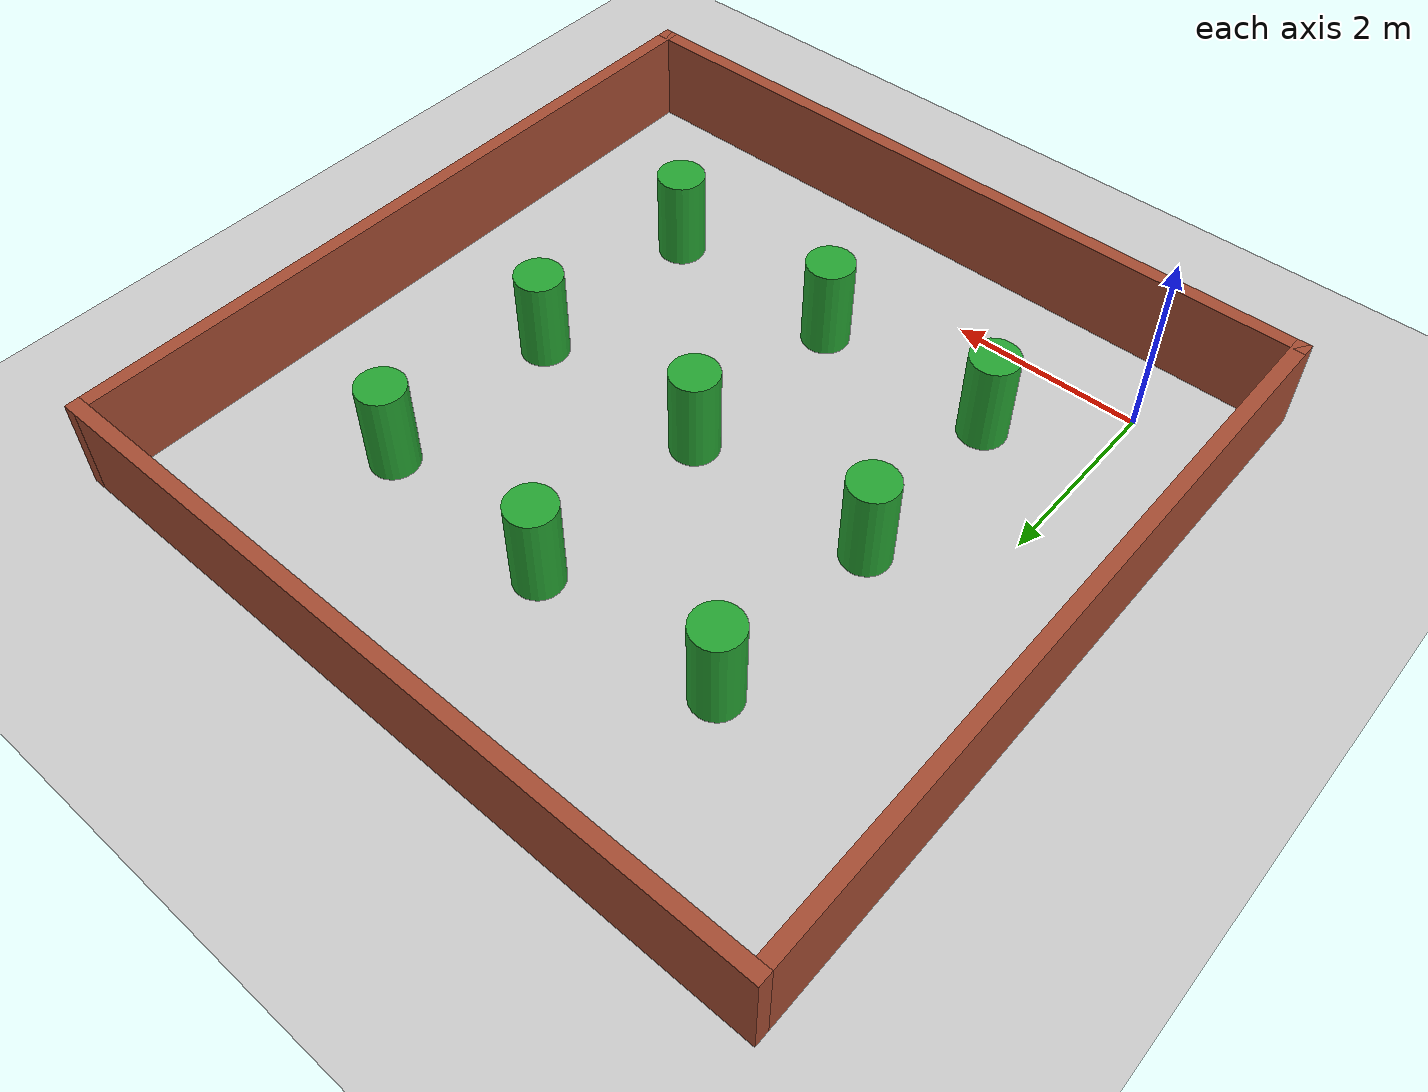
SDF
<sdf version="1.7">
 <world name="default">
  <light name="sun" type="directional">
   <pose>0 0 10 0 -0 0</pose>
   <diffuse>0.8 0.8 0.8 1</diffuse>
   <specular>0.2 0.2 0.2 1</specular>
   <attenuation>
    <range>1000</range>
    <constant>0.9</constant>
    <linear>0.01</linear>
    <quadratic>0.001</quadratic>
   </attenuation>
   <direction>-0.5 0.1 -0.9</direction>
   <spot><inner_angle>0</inner_angle><outer_angle>0</outer_angle><falloff>0</falloff></spot>
  </light>
  <model name="ground_plane">
   <static>1</static>
   <link name="link">
    <collision name="collision">
     <geometry><plane><normal>0 0 1</normal><size>100 100</size></plane></geometry>
     <surface><friction><ode><mu>100</mu><mu2>50</mu2></ode></friction></surface>
    </collision>
    <visual name="visual">
     <cast_shadows>0</cast_shadows>
     <geometry><plane><normal>0 0 1</normal><size>100 100</size></plane></geometry>
     <material>
      <script><uri>file://media/materials/scripts/gazebo.material</uri><name>Gazebo/Grey</name></script>
     </material>
    </visual>
   </link>
  </model>
  <gravity>0 0 -9.8</gravity>
  <magnetic_field>6e-06 2.3e-05 -4.2e-05</magnetic_field>
  <atmosphere type="adiabatic"/>
  <physics type="ode">
   <max_step_size>0.001</max_step_size>
   <real_time_factor>1</real_time_factor>
   <real_time_update_rate>1000</real_time_update_rate>
  </physics>
  <scene><ambient>0.4 0.4 0.4 1</ambient><background>0.7 0.7 0.7 1</background><shadows>1</shadows></scene>
  <spherical_coordinates>
   <surface_model>EARTH_WGS84</surface_model>
   <latitude_deg>0</latitude_deg>
   <longitude_deg>0</longitude_deg>
   <elevation>0</elevation>
   <heading_deg>0</heading_deg>
  </spherical_coordinates>
  <model name="obot_world">
   <pose>2.91671 3.00896 0 0 -0 0</pose>
   <link name="Wall_5">
    <collision name="Wall_5_Collision">
     <geometry><box><size>8 0.15 1</size></box></geometry>
     <pose>0 0 0.5 0 -0 0</pose>
    </collision>
    <visual name="Wall_5_Visual">
     <pose>0 0 0.5 0 -0 0</pose>
     <geometry><box><size>8 0.15 1</size></box></geometry>
     <material>
      <script><uri>file://media/materials/scripts/gazebo.material</uri><name>Gazebo/Bricks</name></script>
      <ambient>1 1 1 1</ambient>
     </material>
     <meta><layer>0</layer></meta>
    </visual>
    <pose>-0 -3.925 0 0 -0 0</pose>
   </link>
   <link name="Wall_6">
    <collision name="Wall_6_Collision">
     <geometry><box><size>8 0.15 1</size></box></geometry>
     <pose>0 0 0.5 0 -0 0</pose>
    </collision>
    <visual name="Wall_6_Visual">
     <pose>0 0 0.5 0 -0 0</pose>
     <geometry><box><size>8 0.15 1</size></box></geometry>
     <material>
      <script><uri>file://media/materials/scripts/gazebo.material</uri><name>Gazebo/Bricks</name></script>
      <ambient>1 1 1 1</ambient>
     </material>
     <meta><layer>0</layer></meta>
    </visual>
    <pose>3.925 -0 0 0 -0 1.5708</pose>
   </link>
   <link name="Wall_7">
    <collision name="Wall_7_Collision">
     <geometry><box><size>8 0.15 1</size></box></geometry>
     <pose>0 0 0.5 0 -0 0</pose>
    </collision>
    <visual name="Wall_7_Visual">
     <pose>0 0 0.5 0 -0 0</pose>
     <geometry><box><size>8 0.15 1</size></box></geometry>
     <material>
      <script><uri>file://media/materials/scripts/gazebo.material</uri><name>Gazebo/Bricks</name></script>
      <ambient>1 1 1 1</ambient>
     </material>
     <meta><layer>0</layer></meta>
    </visual>
    <pose>-0 3.925 0 0 -0 3.14159</pose>
   </link>
   <link name="Wall_8">
    <collision name="Wall_8_Collision">
     <geometry><box><size>8 0.15 1</size></box></geometry>
     <pose>0 0 0.5 0 -0 0</pose>
    </collision>
    <visual name="Wall_8_Visual">
     <pose>0 0 0.5 0 -0 0</pose>
     <geometry><box><size>8 0.15 1</size></box></geometry>
     <material>
      <script><uri>file://media/materials/scripts/gazebo.material</uri><name>Gazebo/Bricks</name></script>
      <ambient>1 1 1 1</ambient>
     </material>
     <meta><layer>0</layer></meta>
    </visual>
    <pose>-3.925 -0 0 0 -0 -1.5708</pose>
   </link>
   <static>1</static>
  </model>
  <model name="unit_cylinder">
   <link name="link">
    <inertial>
     <mass>100</mass>
     <inertia><ixx>14.5833</ixx><ixy>0</ixy><ixz>0</ixz><iyy>14.5833</iyy><iyz>0</iyz><izz>12.5</izz></inertia>
    </inertial>
    <visual name="visual">
     <geometry><cylinder><radius>0.25</radius><length>1</length></cylinder></geometry>
     <material>
      <script><name>Gazebo/Green</name><uri>file://media/materials/scripts/gazebo.material</uri></script>
      <shader type="pixel"><normal_map>__default__</normal_map></shader>
      <ambient>0.3 0.3 0.3 1</ambient>
      <diffuse>0.7 0.7 0.7 1</diffuse>
      <specular>0.01 0.01 0.01 1</specular>
      <emissive>0 0 0 1</emissive>
     </material>
    </visual>
    <collision name="collision">
     <geometry><cylinder><radius>0.25</radius><length>1</length></cylinder></geometry>
     <surface>
      <friction>
       <ode><mu>1</mu><mu2>1</mu2><fdir1>0 0 0</fdir1><slip1>0</slip1><slip2>0</slip2></ode>
       <torsional>
        <coefficient>1</coefficient>
        <patch_radius>0</patch_radius>
        <surface_radius>0</surface_radius>
        <use_patch_radius>1</use_patch_radius>
        <ode><slip>0</slip></ode>
       </torsional>
      </friction>
      <bounce><restitution_coefficient>0</restitution_coefficient><threshold>1e+06</threshold></bounce>
      <contact>
       <collide_without_contact>0</collide_without_contact>
       <collide_without_contact_bitmask>1</collide_without_contact_bitmask>
       <collide_bitmask>1</collide_bitmask>
       <ode>
        <soft_cfm>0</soft_cfm>
        <soft_erp>0.2</soft_erp>
        <kp>1e+13</kp>
        <kd>1</kd>
        <max_vel>0.01</max_vel>
        <min_depth>0</min_depth>
       </ode>
       <bullet>
        <split_impulse>1</split_impulse>
        <split_impulse_penetration_threshold>-0.01</split_impulse_penetration_threshold>
        <soft_cfm>0</soft_cfm>
        <soft_erp>0.2</soft_erp>
        <kp>1e+13</kp>
        <kd>1</kd>
       </bullet>
      </contact>
     </surface>
    </collision>
   </link>
   <static>0</static>
   <pose>1.04139 1.04439 0.5 0 -0 0</pose>
  </model>
  <model name="unit_cylinder_clone">
   <link name="link">
    <inertial>
     <mass>100</mass>
     <inertia><ixx>14.5833</ixx><ixy>0</ixy><ixz>0</ixz><iyy>14.5833</iyy><iyz>0</iyz><izz>12.5</izz></inertia>
    </inertial>
    <visual name="visual">
     <geometry><cylinder><radius>0.25</radius><length>1</length></cylinder></geometry>
     <material>
      <script><name>Gazebo/Green</name><uri>file://media/materials/scripts/gazebo.material</uri></script>
      <shader type="pixel"><normal_map>__default__</normal_map></shader>
      <ambient>0.3 0.3 0.3 1</ambient>
      <diffuse>0.7 0.7 0.7 1</diffuse>
      <specular>0.01 0.01 0.01 1</specular>
      <emissive>0 0 0 1</emissive>
     </material>
    </visual>
    <collision name="collision">
     <geometry><cylinder><radius>0.25</radius><length>1</length></cylinder></geometry>
     <surface>
      <friction>
       <ode><mu>1</mu><mu2>1</mu2><fdir1>0 0 0</fdir1><slip1>0</slip1><slip2>0</slip2></ode>
       <torsional>
        <coefficient>1</coefficient>
        <patch_radius>0</patch_radius>
        <surface_radius>0</surface_radius>
        <use_patch_radius>1</use_patch_radius>
        <ode><slip>0</slip></ode>
       </torsional>
      </friction>
      <bounce><restitution_coefficient>0</restitution_coefficient><threshold>1e+06</threshold></bounce>
      <contact>
       <collide_without_contact>0</collide_without_contact>
       <collide_without_contact_bitmask>1</collide_without_contact_bitmask>
       <collide_bitmask>1</collide_bitmask>
       <ode>
        <soft_cfm>0</soft_cfm>
        <soft_erp>0.2</soft_erp>
        <kp>1e+13</kp>
        <kd>1</kd>
        <max_vel>0.01</max_vel>
        <min_depth>0</min_depth>
       </ode>
       <bullet>
        <split_impulse>1</split_impulse>
        <split_impulse_penetration_threshold>-0.01</split_impulse_penetration_threshold>
        <soft_cfm>0</soft_cfm>
        <soft_erp>0.2</soft_erp>
        <kp>1e+13</kp>
        <kd>1</kd>
       </bullet>
      </contact>
     </surface>
    </collision>
   </link>
   <static>0</static>
   <pose>0.972942 2.99131 0.5 0 -0 0</pose>
  </model>
  <model name="unit_cylinder_clone_0">
   <link name="link">
    <inertial>
     <mass>100</mass>
     <inertia><ixx>14.5833</ixx><ixy>0</ixy><ixz>0</ixz><iyy>14.5833</iyy><iyz>0</iyz><izz>12.5</izz></inertia>
    </inertial>
    <visual name="visual">
     <geometry><cylinder><radius>0.25</radius><length>1</length></cylinder></geometry>
     <material>
      <script><name>Gazebo/Green</name><uri>file://media/materials/scripts/gazebo.material</uri></script>
      <shader type="pixel"><normal_map>__default__</normal_map></shader>
      <ambient>0.3 0.3 0.3 1</ambient>
      <diffuse>0.7 0.7 0.7 1</diffuse>
      <specular>0.01 0.01 0.01 1</specular>
      <emissive>0 0 0 1</emissive>
     </material>
    </visual>
    <collision name="collision">
     <geometry><cylinder><radius>0.25</radius><length>1</length></cylinder></geometry>
     <surface>
      <friction>
       <ode><mu>1</mu><mu2>1</mu2><fdir1>0 0 0</fdir1><slip1>0</slip1><slip2>0</slip2></ode>
       <torsional>
        <coefficient>1</coefficient>
        <patch_radius>0</patch_radius>
        <surface_radius>0</surface_radius>
        <use_patch_radius>1</use_patch_radius>
        <ode><slip>0</slip></ode>
       </torsional>
      </friction>
      <bounce><restitution_coefficient>0</restitution_coefficient><threshold>1e+06</threshold></bounce>
      <contact>
       <collide_without_contact>0</collide_without_contact>
       <collide_without_contact_bitmask>1</collide_without_contact_bitmask>
       <collide_bitmask>1</collide_bitmask>
       <ode>
        <soft_cfm>0</soft_cfm>
        <soft_erp>0.2</soft_erp>
        <kp>1e+13</kp>
        <kd>1</kd>
        <max_vel>0.01</max_vel>
        <min_depth>0</min_depth>
       </ode>
       <bullet>
        <split_impulse>1</split_impulse>
        <split_impulse_penetration_threshold>-0.01</split_impulse_penetration_threshold>
        <soft_cfm>0</soft_cfm>
        <soft_erp>0.2</soft_erp>
        <kp>1e+13</kp>
        <kd>1</kd>
       </bullet>
      </contact>
     </surface>
    </collision>
   </link>
   <static>0</static>
   <pose>1 5 0.5 0 -0 0</pose>
  </model>
  <model name="unit_cylinder_clone_1">
   <link name="link">
    <inertial>
     <mass>100</mass>
     <inertia><ixx>14.5833</ixx><ixy>0</ixy><ixz>0</ixz><iyy>14.5833</iyy><iyz>0</iyz><izz>12.5</izz></inertia>
    </inertial>
    <visual name="visual">
     <geometry><cylinder><radius>0.25</radius><length>1</length></cylinder></geometry>
     <material>
      <script><name>Gazebo/Green</name><uri>file://media/materials/scripts/gazebo.material</uri></script>
      <shader type="pixel"><normal_map>__default__</normal_map></shader>
      <ambient>0.3 0.3 0.3 1</ambient>
      <diffuse>0.7 0.7 0.7 1</diffuse>
      <specular>0.01 0.01 0.01 1</specular>
      <emissive>0 0 0 1</emissive>
     </material>
    </visual>
    <collision name="collision">
     <geometry><cylinder><radius>0.25</radius><length>1</length></cylinder></geometry>
     <surface>
      <friction>
       <ode><mu>1</mu><mu2>1</mu2><fdir1>0 0 0</fdir1><slip1>0</slip1><slip2>0</slip2></ode>
       <torsional>
        <coefficient>1</coefficient>
        <patch_radius>0</patch_radius>
        <surface_radius>0</surface_radius>
        <use_patch_radius>1</use_patch_radius>
        <ode><slip>0</slip></ode>
       </torsional>
      </friction>
      <bounce><restitution_coefficient>0</restitution_coefficient><threshold>1e+06</threshold></bounce>
      <contact>
       <collide_without_contact>0</collide_without_contact>
       <collide_without_contact_bitmask>1</collide_without_contact_bitmask>
       <collide_bitmask>1</collide_bitmask>
       <ode>
        <soft_cfm>0</soft_cfm>
        <soft_erp>0.2</soft_erp>
        <kp>1e+13</kp>
        <kd>1</kd>
        <max_vel>0.01</max_vel>
        <min_depth>0</min_depth>
       </ode>
       <bullet>
        <split_impulse>1</split_impulse>
        <split_impulse_penetration_threshold>-0.01</split_impulse_penetration_threshold>
        <soft_cfm>0</soft_cfm>
        <soft_erp>0.2</soft_erp>
        <kp>1e+13</kp>
        <kd>1</kd>
       </bullet>
      </contact>
     </surface>
    </collision>
   </link>
   <static>0</static>
   <pose>2.98372 0.998434 0.5 0 -0 0</pose>
  </model>
  <model name="unit_cylinder_clone_2">
   <link name="link">
    <inertial>
     <mass>100</mass>
     <inertia><ixx>14.5833</ixx><ixy>0</ixy><ixz>0</ixz><iyy>14.5833</iyy><iyz>0</iyz><izz>12.5</izz></inertia>
    </inertial>
    <visual name="visual">
     <geometry><cylinder><radius>0.25</radius><length>1</length></cylinder></geometry>
     <material>
      <script><name>Gazebo/Green</name><uri>file://media/materials/scripts/gazebo.material</uri></script>
      <shader type="pixel"><normal_map>__default__</normal_map></shader>
      <ambient>0.3 0.3 0.3 1</ambient>
      <diffuse>0.7 0.7 0.7 1</diffuse>
      <specular>0.01 0.01 0.01 1</specular>
      <emissive>0 0 0 1</emissive>
     </material>
    </visual>
    <collision name="collision">
     <geometry><cylinder><radius>0.25</radius><length>1</length></cylinder></geometry>
     <surface>
      <friction>
       <ode><mu>1</mu><mu2>1</mu2><fdir1>0 0 0</fdir1><slip1>0</slip1><slip2>0</slip2></ode>
       <torsional>
        <coefficient>1</coefficient>
        <patch_radius>0</patch_radius>
        <surface_radius>0</surface_radius>
        <use_patch_radius>1</use_patch_radius>
        <ode><slip>0</slip></ode>
       </torsional>
      </friction>
      <bounce><restitution_coefficient>0</restitution_coefficient><threshold>1e+06</threshold></bounce>
      <contact>
       <collide_without_contact>0</collide_without_contact>
       <collide_without_contact_bitmask>1</collide_without_contact_bitmask>
       <collide_bitmask>1</collide_bitmask>
       <ode>
        <soft_cfm>0</soft_cfm>
        <soft_erp>0.2</soft_erp>
        <kp>1e+13</kp>
        <kd>1</kd>
        <max_vel>0.01</max_vel>
        <min_depth>0</min_depth>
       </ode>
       <bullet>
        <split_impulse>1</split_impulse>
        <split_impulse_penetration_threshold>-0.01</split_impulse_penetration_threshold>
        <soft_cfm>0</soft_cfm>
        <soft_erp>0.2</soft_erp>
        <kp>1e+13</kp>
        <kd>1</kd>
       </bullet>
      </contact>
     </surface>
    </collision>
   </link>
   <static>0</static>
   <pose>2.9843 3.01167 0.5 0 -0 0</pose>
  </model>
  <model name="unit_cylinder_clone_3">
   <link name="link">
    <inertial>
     <mass>100</mass>
     <inertia><ixx>14.5833</ixx><ixy>0</ixy><ixz>0</ixz><iyy>14.5833</iyy><iyz>0</iyz><izz>12.5</izz></inertia>
    </inertial>
    <visual name="visual">
     <geometry><cylinder><radius>0.25</radius><length>1</length></cylinder></geometry>
     <material>
      <script><name>Gazebo/Green</name><uri>file://media/materials/scripts/gazebo.material</uri></script>
      <shader type="pixel"><normal_map>__default__</normal_map></shader>
      <ambient>0.3 0.3 0.3 1</ambient>
      <diffuse>0.7 0.7 0.7 1</diffuse>
      <specular>0.01 0.01 0.01 1</specular>
      <emissive>0 0 0 1</emissive>
     </material>
    </visual>
    <collision name="collision">
     <geometry><cylinder><radius>0.25</radius><length>1</length></cylinder></geometry>
     <surface>
      <friction>
       <ode><mu>1</mu><mu2>1</mu2><fdir1>0 0 0</fdir1><slip1>0</slip1><slip2>0</slip2></ode>
       <torsional>
        <coefficient>1</coefficient>
        <patch_radius>0</patch_radius>
        <surface_radius>0</surface_radius>
        <use_patch_radius>1</use_patch_radius>
        <ode><slip>0</slip></ode>
       </torsional>
      </friction>
      <bounce><restitution_coefficient>0</restitution_coefficient><threshold>1e+06</threshold></bounce>
      <contact>
       <collide_without_contact>0</collide_without_contact>
       <collide_without_contact_bitmask>1</collide_without_contact_bitmask>
       <collide_bitmask>1</collide_bitmask>
       <ode>
        <soft_cfm>0</soft_cfm>
        <soft_erp>0.2</soft_erp>
        <kp>1e+13</kp>
        <kd>1</kd>
        <max_vel>0.01</max_vel>
        <min_depth>0</min_depth>
       </ode>
       <bullet>
        <split_impulse>1</split_impulse>
        <split_impulse_penetration_threshold>-0.01</split_impulse_penetration_threshold>
        <soft_cfm>0</soft_cfm>
        <soft_erp>0.2</soft_erp>
        <kp>1e+13</kp>
        <kd>1</kd>
       </bullet>
      </contact>
     </surface>
    </collision>
   </link>
   <static>0</static>
   <pose>2.98315 5.09437 0.5 0 -0 0</pose>
  </model>
  <model name="unit_cylinder_clone_4">
   <link name="link">
    <inertial>
     <mass>100</mass>
     <inertia><ixx>14.5833</ixx><ixy>0</ixy><ixz>0</ixz><iyy>14.5833</iyy><iyz>0</iyz><izz>12.5</izz></inertia>
    </inertial>
    <visual name="visual">
     <geometry><cylinder><radius>0.25</radius><length>1</length></cylinder></geometry>
     <material>
      <script><name>Gazebo/Green</name><uri>file://media/materials/scripts/gazebo.material</uri></script>
      <shader type="pixel"><normal_map>__default__</normal_map></shader>
      <ambient>0.3 0.3 0.3 1</ambient>
      <diffuse>0.7 0.7 0.7 1</diffuse>
      <specular>0.01 0.01 0.01 1</specular>
      <emissive>0 0 0 1</emissive>
     </material>
    </visual>
    <collision name="collision">
     <geometry><cylinder><radius>0.25</radius><length>1</length></cylinder></geometry>
     <surface>
      <friction>
       <ode><mu>1</mu><mu2>1</mu2><fdir1>0 0 0</fdir1><slip1>0</slip1><slip2>0</slip2></ode>
       <torsional>
        <coefficient>1</coefficient>
        <patch_radius>0</patch_radius>
        <surface_radius>0</surface_radius>
        <use_patch_radius>1</use_patch_radius>
        <ode><slip>0</slip></ode>
       </torsional>
      </friction>
      <bounce><restitution_coefficient>0</restitution_coefficient><threshold>1e+06</threshold></bounce>
      <contact>
       <collide_without_contact>0</collide_without_contact>
       <collide_without_contact_bitmask>1</collide_without_contact_bitmask>
       <collide_bitmask>1</collide_bitmask>
       <ode>
        <soft_cfm>0</soft_cfm>
        <soft_erp>0.2</soft_erp>
        <kp>1e+13</kp>
        <kd>1</kd>
        <max_vel>0.01</max_vel>
        <min_depth>0</min_depth>
       </ode>
       <bullet>
        <split_impulse>1</split_impulse>
        <split_impulse_penetration_threshold>-0.01</split_impulse_penetration_threshold>
        <soft_cfm>0</soft_cfm>
        <soft_erp>0.2</soft_erp>
        <kp>1e+13</kp>
        <kd>1</kd>
       </bullet>
      </contact>
     </surface>
    </collision>
   </link>
   <static>0</static>
   <pose>4.99532 0.928398 0.5 0 -0 0</pose>
  </model>
  <model name="unit_cylinder_clone_5">
   <link name="link">
    <inertial>
     <mass>100</mass>
     <inertia><ixx>14.5833</ixx><ixy>0</ixy><ixz>0</ixz><iyy>14.5833</iyy><iyz>0</iyz><izz>12.5</izz></inertia>
    </inertial>
    <visual name="visual">
     <geometry><cylinder><radius>0.25</radius><length>1</length></cylinder></geometry>
     <material>
      <script><name>Gazebo/Green</name><uri>file://media/materials/scripts/gazebo.material</uri></script>
      <shader type="pixel"><normal_map>__default__</normal_map></shader>
      <ambient>0.3 0.3 0.3 1</ambient>
      <diffuse>0.7 0.7 0.7 1</diffuse>
      <specular>0.01 0.01 0.01 1</specular>
      <emissive>0 0 0 1</emissive>
     </material>
    </visual>
    <collision name="collision">
     <geometry><cylinder><radius>0.25</radius><length>1</length></cylinder></geometry>
     <surface>
      <friction>
       <ode><mu>1</mu><mu2>1</mu2><fdir1>0 0 0</fdir1><slip1>0</slip1><slip2>0</slip2></ode>
       <torsional>
        <coefficient>1</coefficient>
        <patch_radius>0</patch_radius>
        <surface_radius>0</surface_radius>
        <use_patch_radius>1</use_patch_radius>
        <ode><slip>0</slip></ode>
       </torsional>
      </friction>
      <bounce><restitution_coefficient>0</restitution_coefficient><threshold>1e+06</threshold></bounce>
      <contact>
       <collide_without_contact>0</collide_without_contact>
       <collide_without_contact_bitmask>1</collide_without_contact_bitmask>
       <collide_bitmask>1</collide_bitmask>
       <ode>
        <soft_cfm>0</soft_cfm>
        <soft_erp>0.2</soft_erp>
        <kp>1e+13</kp>
        <kd>1</kd>
        <max_vel>0.01</max_vel>
        <min_depth>0</min_depth>
       </ode>
       <bullet>
        <split_impulse>1</split_impulse>
        <split_impulse_penetration_threshold>-0.01</split_impulse_penetration_threshold>
        <soft_cfm>0</soft_cfm>
        <soft_erp>0.2</soft_erp>
        <kp>1e+13</kp>
        <kd>1</kd>
       </bullet>
      </contact>
     </surface>
    </collision>
   </link>
   <static>0</static>
   <pose>5 3 0.5 0 -0 0</pose>
  </model>
  <model name="unit_cylinder_clone_6">
   <link name="link">
    <inertial>
     <mass>100</mass>
     <inertia><ixx>14.5833</ixx><ixy>0</ixy><ixz>0</ixz><iyy>14.5833</iyy><iyz>0</iyz><izz>12.5</izz></inertia>
    </inertial>
    <visual name="visual">
     <geometry><cylinder><radius>0.25</radius><length>1</length></cylinder></geometry>
     <material>
      <script><name>Gazebo/Green</name><uri>file://media/materials/scripts/gazebo.material</uri></script>
      <shader type="pixel"><normal_map>__default__</normal_map></shader>
      <ambient>0.3 0.3 0.3 1</ambient>
      <diffuse>0.7 0.7 0.7 1</diffuse>
      <specular>0.01 0.01 0.01 1</specular>
      <emissive>0 0 0 1</emissive>
     </material>
    </visual>
    <collision name="collision">
     <geometry><cylinder><radius>0.25</radius><length>1</length></cylinder></geometry>
     <surface>
      <friction>
       <ode><mu>1</mu><mu2>1</mu2><fdir1>0 0 0</fdir1><slip1>0</slip1><slip2>0</slip2></ode>
       <torsional>
        <coefficient>1</coefficient>
        <patch_radius>0</patch_radius>
        <surface_radius>0</surface_radius>
        <use_patch_radius>1</use_patch_radius>
        <ode><slip>0</slip></ode>
       </torsional>
      </friction>
      <bounce><restitution_coefficient>0</restitution_coefficient><threshold>1e+06</threshold></bounce>
      <contact>
       <collide_without_contact>0</collide_without_contact>
       <collide_without_contact_bitmask>1</collide_without_contact_bitmask>
       <collide_bitmask>1</collide_bitmask>
       <ode>
        <soft_cfm>0</soft_cfm>
        <soft_erp>0.2</soft_erp>
        <kp>1e+13</kp>
        <kd>1</kd>
        <max_vel>0.01</max_vel>
        <min_depth>0</min_depth>
       </ode>
       <bullet>
        <split_impulse>1</split_impulse>
        <split_impulse_penetration_threshold>-0.01</split_impulse_penetration_threshold>
        <soft_cfm>0</soft_cfm>
        <soft_erp>0.2</soft_erp>
        <kp>1e+13</kp>
        <kd>1</kd>
       </bullet>
      </contact>
     </surface>
    </collision>
   </link>
   <static>0</static>
   <pose>5 5 0.5 0 -0 0</pose>
  </model>
 </world>
</sdf>
